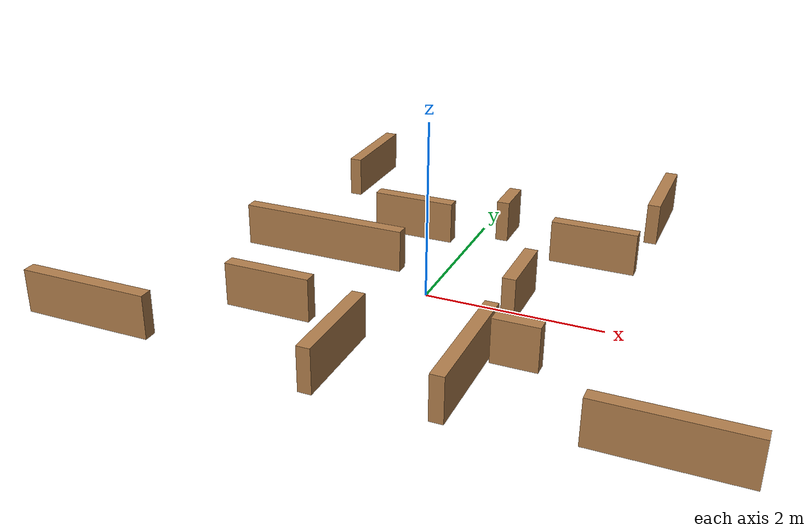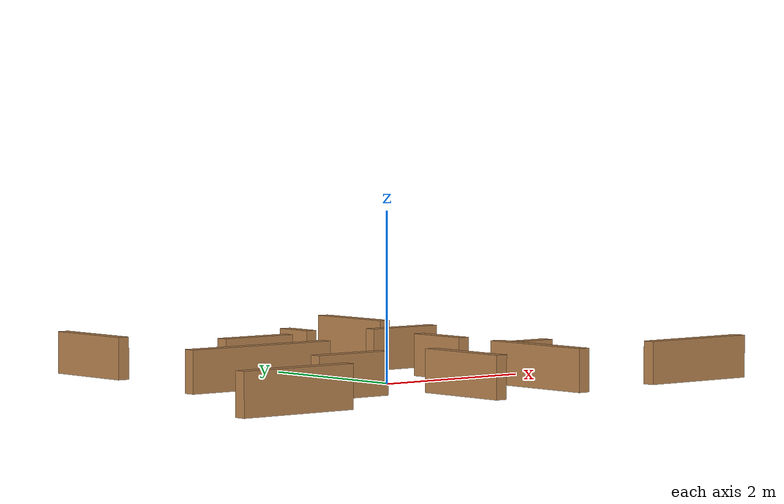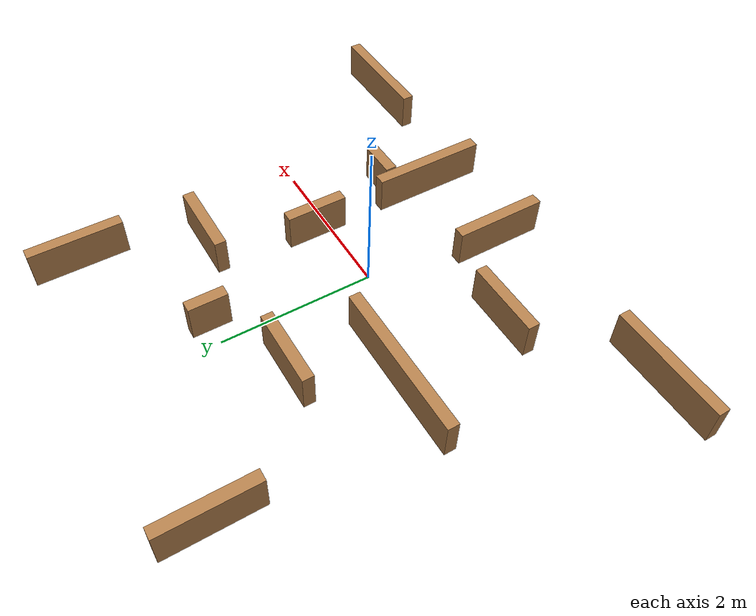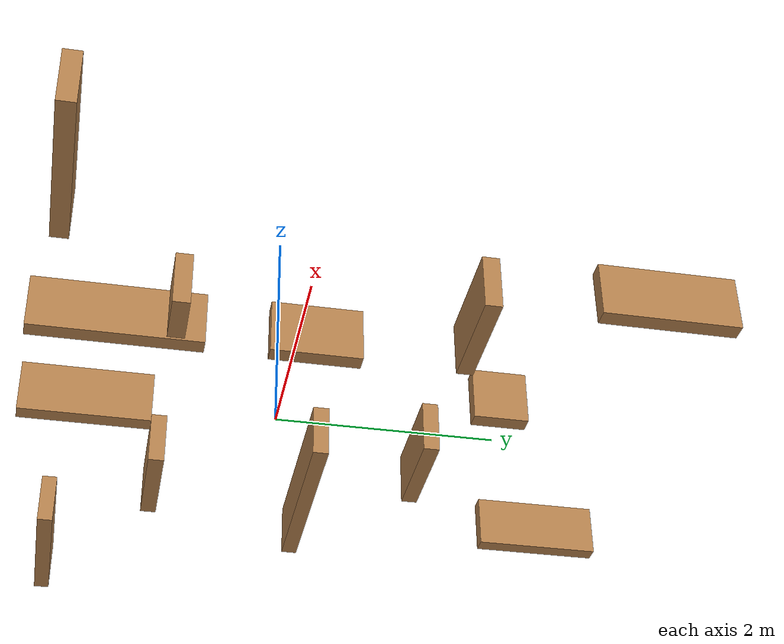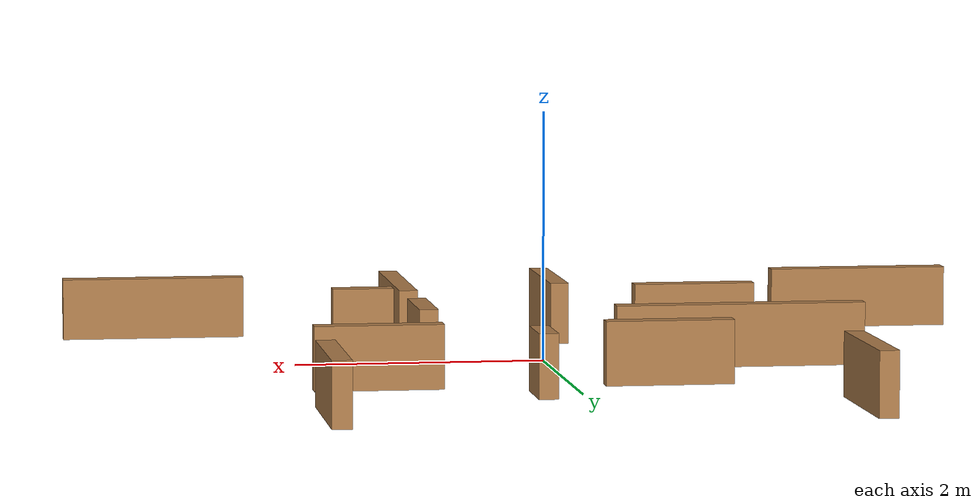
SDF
<sdf version='1.6'>
  <model name='inner_walls'>
    <pose frame=''>0 0 0 0 0 0</pose>

    <link name='inner_wall_1'>
      <collision name='inner_wall_1_collision'>
        <geometry>
          <box>
            <size>1 0.15 0.5</size>
          </box>
        </geometry>
        <pose frame=''>0 0 0.25 0 0 0</pose>
      </collision>
      <visual name='inner_wall_1_visual'>
        <geometry>
          <box>
            <size>1 0.15 0.5</size>
          </box>
        </geometry>
        <pose frame=''>0 0 0.25 0 0 0</pose>
        <material>
          <script>
            <uri>file://media/materials/scripts/gazebo.material</uri>
            <name>Gazebo/Wood</name>
          </script>
        </material>
      </visual>
      <pose frame=''>1.5 1.5 0 0 0 0</pose>
    </link>

    <link name='inner_wall_small'>
      <collision name='inner_wall_small_collision'>
        <geometry>
          <box>
            <size>0.5 0.15 0.5</size>
          </box>
        </geometry>
        <pose frame=''>0 0 0.25 0 0 0</pose>
      </collision>
      <visual name='inner_wall_small_visual'>
        <geometry>
          <box>
            <size>0.5 0.15 0.5</size>
          </box>
        </geometry>
        <pose frame=''>0 0 0.25 0 0 0</pose>
        <material>
          <script>
            <uri>file://media/materials/scripts/gazebo.material</uri>
            <name>Gazebo/Wood</name>
          </script>
        </material>
      </visual>
      <pose frame=''>1.35 -1 0 0 0 0</pose>
    </link>

    <link name='inner_wall_2'>
      <collision name='inner_wall_2_collision'>
        <geometry>
          <box>
            <size>1.5 0.15 0.5</size>
          </box>
        </geometry>
        <pose frame=''>0 0 0.25 0 0 0</pose>
      </collision>
      <visual name='inner_wall_2_visual'>
        <geometry>
          <box>
            <size>1.5 0.15 0.5</size>
          </box>
        </geometry>
        <pose frame=''>0 0 0.25 0 0 0</pose>
        <material>
          <script>
            <uri>file://media/materials/scripts/gazebo.material</uri>
            <name>Gazebo/Wood</name>
          </script>
        </material>
      </visual>
      <pose frame=''>1 -1.5 0 0 0 1.5708</pose>
    </link>

    <link name='inner_wall_horizontal_small'>
      <collision name='inner_wall_horizontal_small_collision'>
        <geometry>
          <box>
            <size>0.5 0.15 0.5</size>
          </box>
        </geometry>
        <pose frame=''>0 0 0.25 0 0 0</pose>
      </collision>
      <visual name='inner_wall_horizontal_small_visual'>
        <geometry>
          <box>
            <size>0.5 0.15 0.5</size>
          </box>
        </geometry>
        <pose frame=''>0 0 0.25 0 0 0</pose>
        <material>
          <script>
            <uri>file://media/materials/scripts/gazebo.material</uri>
            <name>Gazebo/Wood</name>
          </script>
        </material>
      </visual>
      <pose frame=''>0.30 2 0 0 0 1.5708</pose>
    </link>

    <link name='inner_wall_3'>
      <collision name='inner_wall_3_collision'>
        <geometry>
          <box>
            <size>2 0.15 0.5</size>
          </box>
        </geometry>
        <pose frame=''>0 0 0.25 0 0 0</pose>
      </collision>
      <visual name='inner_wall_3_visual'>
        <geometry>
          <box>
            <size>2 0.15 0.5</size>
          </box>
        </geometry>
        <pose frame=''>0 0 0.25 0 0 0</pose>
        <material>
          <script>
            <uri>file://media/materials/scripts/gazebo.material</uri>
            <name>Gazebo/Wood</name>
          </script>
        </material>
      </visual>
      <pose frame=''>-1.5 0.5 0 0 0 0</pose>
    </link>

    <link name='inner_wall_3_alternative'>
      <collision name='inner_wall_3_alternative_collision'>
        <geometry>
          <box>
            <size>1.5 0.15 0.5</size>
          </box>
        </geometry>
        <pose frame=''>0 0 0.25 0 0 0</pose>
      </collision>
      <visual name='inner_wall_3_alternative_visual'>
        <geometry>
          <box>
            <size>1.5 0.15 0.5</size>
          </box>
        </geometry>
        <pose frame=''>0 0 0.25 0 0 0</pose>
        <material>
          <script>
            <uri>file://media/materials/scripts/gazebo.material</uri>
            <name>Gazebo/Wood</name>
          </script>
        </material>
      </visual>
      <pose frame=''>3 -2 0 0 0 0</pose>
    </link>

    <link name='inner_wall_3_alternative_2'>
      <collision name='inner_wall_3_alternative_collision_2'>
        <geometry>
          <box>
            <size>1.5 0.15 0.5</size>
          </box>
        </geometry>
        <pose frame=''>0 0 0.25 0 0 0</pose>
      </collision>
      <visual name='inner_wall_3_alternative_2_visual'>
        <geometry>
          <box>
            <size>1.5 0.15 0.5</size>
          </box>
        </geometry>
        <pose frame=''>0 0 0.25 0 0 0</pose>
        <material>
          <script>
            <uri>file://media/materials/scripts/gazebo.material</uri>
            <name>Gazebo/Wood</name>
          </script>
        </material>
      </visual>
      <pose frame=''>-3 -2 0 0 0 0</pose>
    </link>

    <link name='inner_wall_big2'>
      <collision name='inner_wall_big2_collision'>
        <geometry>
          <box>
            <size>1.0 0.10 0.3</size>
          </box>
        </geometry>
        <pose frame=''>0 0 0.5 0 0 0</pose>
      </collision>
      <visual name='inner_wall_big2_visual'>
        <geometry>
          <box>
            <size>1 0.15 0.5</size>
          </box>
        </geometry>
        <pose frame=''>0 0 0.25 0 0 0</pose>
        <material>
          <script>
            <uri>file://media/materials/scripts/gazebo.material</uri>
            <name>Gazebo/Wood</name>
          </script>
        </material>
      </visual>
      <pose frame=''>-1.4 -1.0 0 0 0 0</pose>
    </link>

    <link name='inner_wall_4'>
      <collision name='inner_wall_4_collision'>
        <geometry>
          <box>
            <size>1 0.15 0.5</size>
          </box>
        </geometry>
        <pose frame=''>0 0 0.25 0 0 0</pose>
      </collision>
      <visual name='inner_wall_4_visual'>
        <geometry>
          <box>
            <size>1 0.15 0.5</size>
          </box>
        </geometry>
        <pose frame=''>0 0 0.25 0 0 0</pose>
        <material>
          <script>
            <uri>file://media/materials/scripts/gazebo.material</uri>
            <name>Gazebo/Wood</name>
          </script>
        </material>
      </visual>
      <pose frame=''>-0.75 1.5 0 0 0 0</pose>
    </link>

    <link name='inner_wall_5'>
      <collision name='inner_wall_5_collision'>
        <geometry>
          <box>
            <size>1.2 0.15 0.5</size>
          </box>
        </geometry>
        <pose frame=''>0 0 0.25 0 0 0</pose>
      </collision>
      <visual name='inner_wall_5_visual'>
        <geometry>
          <box>
            <size>1.2 0.15 0.5</size>
          </box>
        </geometry>
        <pose frame=''>0 0 0.25 0 0 0</pose>
        <material>
          <script>
            <uri>file://media/materials/scripts/gazebo.material</uri>
            <name>Gazebo/Wood</name>
          </script>
        </material>
      </visual>
      <pose frame=''>-0.3 -1.7 0 0 0 1.5708</pose>
    </link>

    <link name='inner_wall_5_alternative'>
      <collision name='inner_wall_5_alternative_collision'>
        <geometry>
          <box>
            <size>1.2 0.15 0.5</size>
          </box>
        </geometry>
        <pose frame=''>0 0 0.25 0 0 0</pose>
      </collision>
      <visual name='inner_wall_5_visual_alternative'>
        <geometry>
          <box>
            <size>1.2 0.15 0.5</size>
          </box>
        </geometry>
        <pose frame=''>0 0 0.25 0 0 0</pose>
        <material>
          <script>
            <uri>file://media/materials/scripts/gazebo.material</uri>
            <name>Gazebo/Wood</name>
          </script>
        </material>
      </visual>
      <pose frame=''>2 3 0 0 0 1.5708</pose>
    </link>

    <link name='inner_wall_5_alternative_2'>
      <collision name='inner_wall_5_alternative_2_collision'>
        <geometry>
          <box>
            <size>1.2 0.15 0.5</size>
          </box>
        </geometry>
        <pose frame=''>0 0 0.25 0 0 0</pose>
      </collision>
      <visual name='inner_wall_5_visual_alternative_2'>
        <geometry>
          <box>
            <size>1.2 0.15 0.5</size>
          </box>
        </geometry>
        <pose frame=''>0 0 0.25 0 0 0</pose>
        <material>
          <script>
            <uri>file://media/materials/scripts/gazebo.material</uri>
            <name>Gazebo/Wood</name>
          </script>
        </material>
      </visual>
      <pose frame=''>-2 3 0 0 0 1.5708</pose>
    </link>

    <link name='inner_wall_6'>
      <collision name='inner_wall_6_collision'>
        <geometry>
          <box>
            <size>0.8 0.15 0.5</size>
          </box>
        </geometry>
        <pose frame=''>0 0 0.25 0 0 0</pose>
      </collision>
      <visual name='inner_wall_6_visual'>
        <geometry>
          <box>
            <size>0.8 0.15 0.5</size>
          </box>
        </geometry>
        <pose frame=''>0 0 0.25 0 0 0</pose>
        <material>
          <script>
            <uri>file://media/materials/scripts/gazebo.material</uri>
            <name>Gazebo/Wood</name>
          </script>
        </material>
      </visual>
      <pose frame=''>1 0.2 0 0 0 1.5708</pose>
    </link>
  </model>
</sdf>
